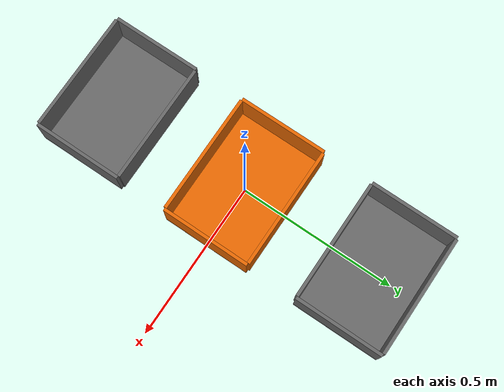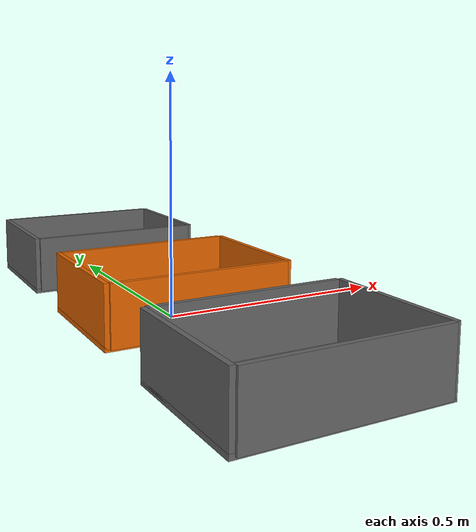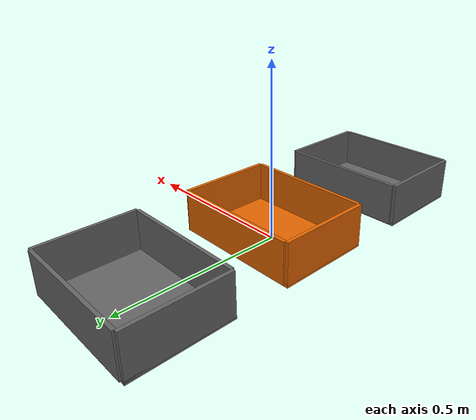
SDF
<?xml version="1.0" ?>
<sdf version="1.9">
  <model name="hot_spot_boxes">
    <static>true</static>

    <!-- Wall thickness -->
    <!-- Box outer: 0.396 x 0.278 x 0.132m. Wall thickness: 0.01m. -->

    <!-- ===== LEFT BOX (y = -0.438m center, cold) ===== -->
    <link name="left_base">
      <pose>0 -0.438 0.005 0 0 0</pose>
      <collision name="col"><geometry><box><size>0.396 0.278 0.01</size></box></geometry></collision>
      <visual name="vis">
        <geometry><box><size>0.396 0.278 0.01</size></box></geometry>
        <material><ambient>0.4 0.4 0.4 1</ambient><diffuse>0.4 0.4 0.4 1</diffuse></material>
      </visual>
    </link>
    <link name="left_front">
      <pose>0.193 -0.438 0.066 0 0 0</pose>
      <collision name="col"><geometry><box><size>0.01 0.278 0.122</size></box></geometry></collision>
      <visual name="vis">
        <geometry><box><size>0.01 0.278 0.122</size></box></geometry>
        <material><ambient>0.4 0.4 0.4 1</ambient><diffuse>0.4 0.4 0.4 1</diffuse></material>
      </visual>
    </link>
    <link name="left_back">
      <pose>-0.193 -0.438 0.066 0 0 0</pose>
      <collision name="col"><geometry><box><size>0.01 0.278 0.122</size></box></geometry></collision>
      <visual name="vis">
        <geometry><box><size>0.01 0.278 0.122</size></box></geometry>
        <material><ambient>0.4 0.4 0.4 1</ambient><diffuse>0.4 0.4 0.4 1</diffuse></material>
      </visual>
    </link>
    <link name="left_sideL">
      <pose>0 -0.577 0.066 0 0 0</pose>
      <collision name="col"><geometry><box><size>0.376 0.01 0.122</size></box></geometry></collision>
      <visual name="vis">
        <geometry><box><size>0.376 0.01 0.122</size></box></geometry>
        <material><ambient>0.4 0.4 0.4 1</ambient><diffuse>0.4 0.4 0.4 1</diffuse></material>
      </visual>
    </link>
    <link name="left_sideR">
      <pose>0 -0.299 0.066 0 0 0</pose>
      <collision name="col"><geometry><box><size>0.376 0.01 0.122</size></box></geometry></collision>
      <visual name="vis">
        <geometry><box><size>0.376 0.01 0.122</size></box></geometry>
        <material><ambient>0.4 0.4 0.4 1</ambient><diffuse>0.4 0.4 0.4 1</diffuse></material>
      </visual>
    </link>

    <!-- ===== CENTER BOX (y = 0.0, HOT - orange) ===== -->
    <link name="hot_base">
      <pose>0 0 0.005 0 0 0</pose>
      <collision name="col"><geometry><box><size>0.396 0.278 0.01</size></box></geometry></collision>
      <visual name="vis">
        <geometry><box><size>0.396 0.278 0.01</size></box></geometry>
        <material><ambient>0.9 0.4 0.0 1</ambient><diffuse>0.9 0.4 0.0 1</diffuse></material>
      </visual>
    </link>
    <link name="hot_front">
      <pose>0.193 0 0.066 0 0 0</pose>
      <collision name="col"><geometry><box><size>0.01 0.278 0.122</size></box></geometry></collision>
      <visual name="vis">
        <geometry><box><size>0.01 0.278 0.122</size></box></geometry>
        <material><ambient>0.9 0.4 0.0 1</ambient><diffuse>0.9 0.4 0.0 1</diffuse></material>
      </visual>
    </link>
    <link name="hot_back">
      <pose>-0.193 0 0.066 0 0 0</pose>
      <collision name="col"><geometry><box><size>0.01 0.278 0.122</size></box></geometry></collision>
      <visual name="vis">
        <geometry><box><size>0.01 0.278 0.122</size></box></geometry>
        <material><ambient>0.9 0.4 0.0 1</ambient><diffuse>0.9 0.4 0.0 1</diffuse></material>
      </visual>
    </link>
    <link name="hot_sideL">
      <pose>0 -0.139 0.066 0 0 0</pose>
      <collision name="col"><geometry><box><size>0.376 0.01 0.122</size></box></geometry></collision>
      <visual name="vis">
        <geometry><box><size>0.376 0.01 0.122</size></box></geometry>
        <material><ambient>0.9 0.4 0.0 1</ambient><diffuse>0.9 0.4 0.0 1</diffuse></material>
      </visual>
    </link>
    <link name="hot_sideR">
      <pose>0 0.139 0.066 0 0 0</pose>
      <collision name="col"><geometry><box><size>0.376 0.01 0.122</size></box></geometry></collision>
      <visual name="vis">
        <geometry><box><size>0.376 0.01 0.122</size></box></geometry>
        <material><ambient>0.9 0.4 0.0 1</ambient><diffuse>0.9 0.4 0.0 1</diffuse></material>
      </visual>
    </link>

    <!-- ===== RIGHT BOX (y = +0.438m, cold) ===== -->
    <link name="right_base">
      <pose>0 0.438 0.005 0 0 0</pose>
      <collision name="col"><geometry><box><size>0.396 0.278 0.01</size></box></geometry></collision>
      <visual name="vis">
        <geometry><box><size>0.396 0.278 0.01</size></box></geometry>
        <material><ambient>0.4 0.4 0.4 1</ambient><diffuse>0.4 0.4 0.4 1</diffuse></material>
      </visual>
    </link>
    <link name="right_front">
      <pose>0.193 0.438 0.066 0 0 0</pose>
      <collision name="col"><geometry><box><size>0.01 0.278 0.122</size></box></geometry></collision>
      <visual name="vis">
        <geometry><box><size>0.01 0.278 0.122</size></box></geometry>
        <material><ambient>0.4 0.4 0.4 1</ambient><diffuse>0.4 0.4 0.4 1</diffuse></material>
      </visual>
    </link>
    <link name="right_back">
      <pose>-0.193 0.438 0.066 0 0 0</pose>
      <collision name="col"><geometry><box><size>0.01 0.278 0.122</size></box></geometry></collision>
      <visual name="vis">
        <geometry><box><size>0.01 0.278 0.122</size></box></geometry>
        <material><ambient>0.4 0.4 0.4 1</ambient><diffuse>0.4 0.4 0.4 1</diffuse></material>
      </visual>
    </link>
    <link name="right_sideL">
      <pose>0 0.299 0.066 0 0 0</pose>
      <collision name="col"><geometry><box><size>0.376 0.01 0.122</size></box></geometry></collision>
      <visual name="vis">
        <geometry><box><size>0.376 0.01 0.122</size></box></geometry>
        <material><ambient>0.4 0.4 0.4 1</ambient><diffuse>0.4 0.4 0.4 1</diffuse></material>
      </visual>
    </link>
    <link name="right_sideR">
      <pose>0 0.577 0.066 0 0 0</pose>
      <collision name="col"><geometry><box><size>0.376 0.01 0.122</size></box></geometry></collision>
      <visual name="vis">
        <geometry><box><size>0.376 0.01 0.122</size></box></geometry>
        <material><ambient>0.4 0.4 0.4 1</ambient><diffuse>0.4 0.4 0.4 1</diffuse></material>
      </visual>
    </link>

  </model>
</sdf>
